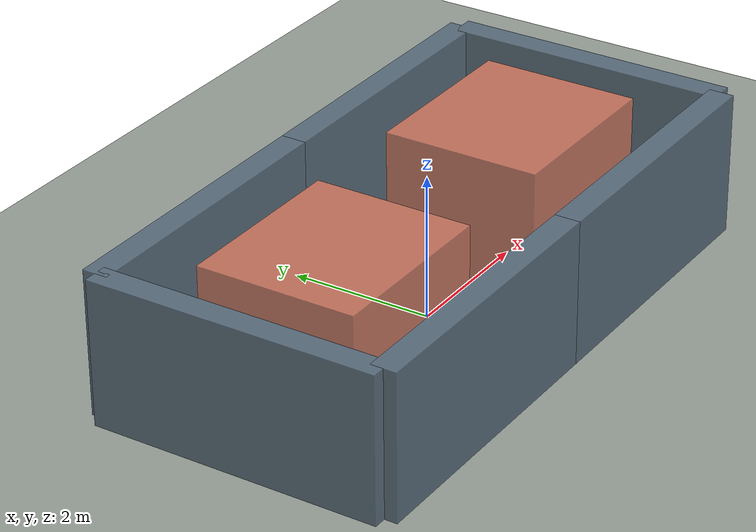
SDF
<sdf version="1.9">
 <world name="navlab_iq_quad_figure8">
  <physics name="1ms" type="ode">
   <max_step_size>0.001</max_step_size>
   <real_time_factor>1.0</real_time_factor>
  </physics>
  <plugin filename="gz-sim-physics-system" name="gz::sim::systems::Physics"/>
  <plugin filename="gz-sim-scene-broadcaster-system" name="gz::sim::systems::SceneBroadcaster"/>
  <plugin filename="gz-sim-sensors-system" name="gz::sim::systems::Sensors">
   <render_engine>ogre2</render_engine>
  </plugin>
  <plugin filename="gz-sim-imu-system" name="gz::sim::systems::Imu"/>
  <plugin filename="gz-sim-user-commands-system" name="gz::sim::systems::UserCommands"/>
  <scene>
   <ambient>0.45 0.45 0.45 1</ambient>
   <background>0.74 0.78 0.82 1</background>
   <shadows>true</shadows>
  </scene>
  <light name="sun" type="directional">
   <pose>0 0 10 0 0 0</pose>
   <diffuse>0.85 0.82 0.74 1</diffuse>
   <specular>0.2 0.2 0.2 1</specular>
   <direction>-0.5 0.1 -0.85</direction>
  </light>
  <model name="ground_plane">
   <static>true</static>
   <link name="link">
    <collision name="collision">
     <geometry><plane><normal>0 0 1</normal><size>16 10</size></plane></geometry>
    </collision>
    <visual name="visual">
     <geometry><plane><normal>0 0 1</normal><size>16 10</size></plane></geometry>
     <material><ambient>0.58 0.61 0.58 1</ambient><diffuse>0.58 0.61 0.58 1</diffuse></material>
    </visual>
   </link>
  </model>
  <model name="ground_collision_slab">
   <static>true</static>
   <pose>0 0 -0.025 0 0 0</pose>
   <link name="link">
    <collision name="collision"><geometry><box><size>16 10 0.05</size></box></geometry></collision>
   </link>
  </model>
  <model name="outer_left_north_wall">
   <static>true</static>
   <pose>-2.05 2.0 1 0 0 0</pose>
   <link name="link">
    <collision name="collision"><geometry><box><size>4.1 0.35 2</size></box></geometry></collision>
    <visual name="visual">
     <geometry><box><size>4.1 0.35 2</size></box></geometry>
     <material><ambient>0.34 0.42 0.50 0.82</ambient><diffuse>0.34 0.42 0.50 0.82</diffuse></material>
    </visual>
   </link>
  </model>
  <model name="outer_left_south_wall">
   <static>true</static>
   <pose>-2.05 -2.0 1 0 0 0</pose>
   <link name="link">
    <collision name="collision"><geometry><box><size>4.1 0.35 2</size></box></geometry></collision>
    <visual name="visual">
     <geometry><box><size>4.1 0.35 2</size></box></geometry>
     <material><ambient>0.34 0.42 0.50 0.82</ambient><diffuse>0.34 0.42 0.50 0.82</diffuse></material>
    </visual>
   </link>
  </model>
  <model name="outer_left_west_wall">
   <static>true</static>
   <pose>-4.1 0 1 0 0 0</pose>
   <link name="link">
    <collision name="collision"><geometry><box><size>0.35 4.0 2</size></box></geometry></collision>
    <visual name="visual">
     <geometry><box><size>0.35 4.0 2</size></box></geometry>
     <material><ambient>0.34 0.42 0.50 0.82</ambient><diffuse>0.34 0.42 0.50 0.82</diffuse></material>
    </visual>
   </link>
  </model>
  <model name="outer_right_north_wall">
   <static>true</static>
   <pose>2.05 2.0 1 0 0 0</pose>
   <link name="link">
    <collision name="collision"><geometry><box><size>4.1 0.35 2</size></box></geometry></collision>
    <visual name="visual">
     <geometry><box><size>4.1 0.35 2</size></box></geometry>
     <material><ambient>0.34 0.42 0.50 0.82</ambient><diffuse>0.34 0.42 0.50 0.82</diffuse></material>
    </visual>
   </link>
  </model>
  <model name="outer_right_south_wall">
   <static>true</static>
   <pose>2.05 -2.0 1 0 0 0</pose>
   <link name="link">
    <collision name="collision"><geometry><box><size>4.1 0.35 2</size></box></geometry></collision>
    <visual name="visual">
     <geometry><box><size>4.1 0.35 2</size></box></geometry>
     <material><ambient>0.34 0.42 0.50 0.82</ambient><diffuse>0.34 0.42 0.50 0.82</diffuse></material>
    </visual>
   </link>
  </model>
  <model name="outer_right_east_wall">
   <static>true</static>
   <pose>4.1 0 1 0 0 0</pose>
   <link name="link">
    <collision name="collision"><geometry><box><size>0.35 4.0 2</size></box></geometry></collision>
    <visual name="visual">
     <geometry><box><size>0.35 4.0 2</size></box></geometry>
     <material><ambient>0.34 0.42 0.50 0.82</ambient><diffuse>0.34 0.42 0.50 0.82</diffuse></material>
    </visual>
   </link>
  </model>
  <model name="inner_left_island">
   <static>true</static>
   <pose>-2.05 0 1 0 0 0</pose>
   <link name="link">
    <collision name="collision"><geometry><box><size>2.55 2.2 2</size></box></geometry></collision>
    <visual name="visual">
     <geometry><box><size>2.55 2.2 2</size></box></geometry>
     <material><ambient>0.86 0.42 0.32 0.74</ambient><diffuse>0.86 0.42 0.32 0.74</diffuse></material>
    </visual>
   </link>
  </model>
  <model name="inner_right_island">
   <static>true</static>
   <pose>2.05 0 1 0 0 0</pose>
   <link name="link">
    <collision name="collision"><geometry><box><size>2.55 2.2 2</size></box></geometry></collision>
    <visual name="visual">
     <geometry><box><size>2.55 2.2 2</size></box></geometry>
     <material><ambient>0.86 0.42 0.32 0.74</ambient><diffuse>0.86 0.42 0.32 0.74</diffuse></material>
    </visual>
   </link>
  </model>
 </world>
</sdf>
